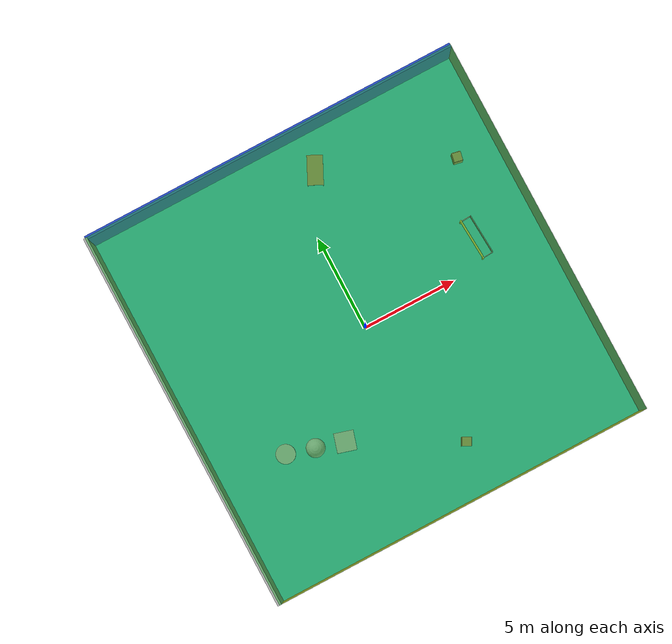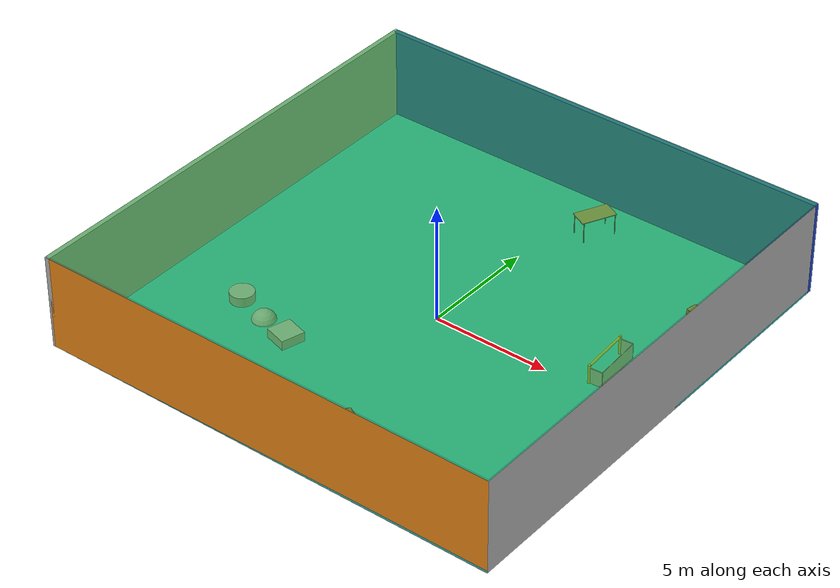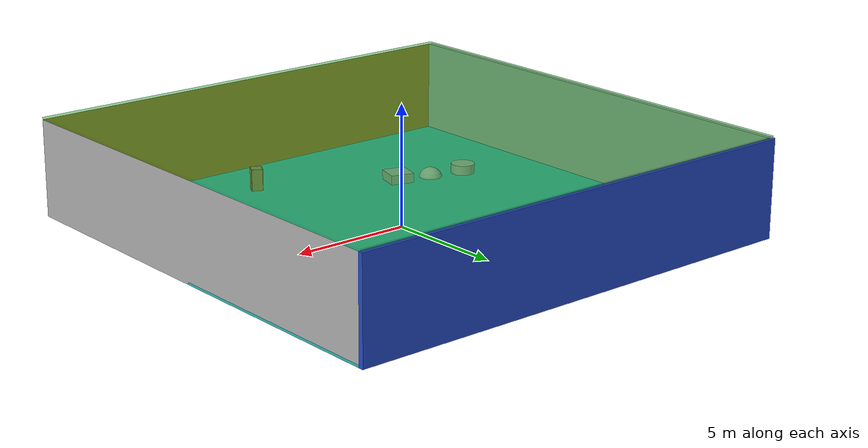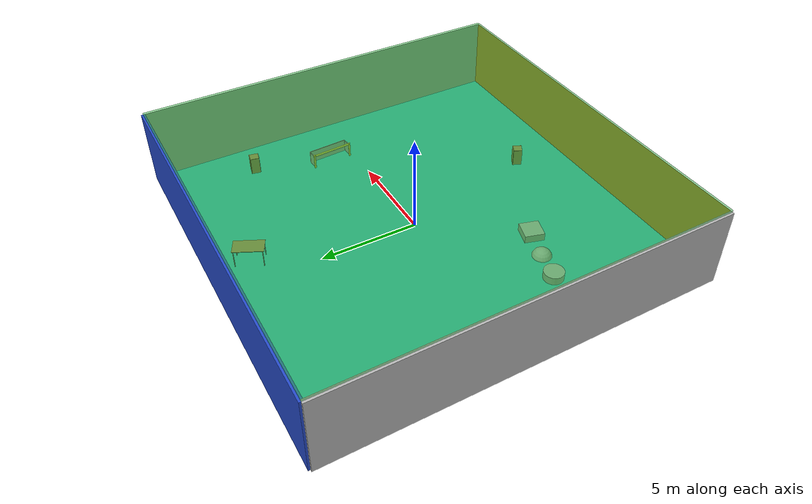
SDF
<sdf version="1.4">
 <world name="default">
  <physics type="ode">
   <max_step_size>0.001</max_step_size>
   <real_time_factor>1</real_time_factor>
   <real_time_update_rate>1000</real_time_update_rate>
   <gravity>0 0 -9.8</gravity>
  </physics>
  <scene><ambient>0.4 0.4 0.4 1</ambient><background>0.7 0.7 0.7 1</background><shadows>1</shadows></scene>
  <model name="Surrounding">
   <static>1</static>
   <link name="Ceiling">
    <collision name="Ceiling_Collision"><geometry><box><size>20 20 0.1</size></box></geometry></collision>
    <visual name="Ceiling_Visual">
     <geometry><box><size>20 20 0.1</size></box></geometry>
     <material>
      <script><uri>file://media/materials/scripts/gazebo.material</uri><name>Gazebo/GreenTransparent</name></script>
     </material>
    </visual>
    <pose>0 0 4.05 0 0 0</pose>
   </link>
   <link name="Wall_South">
    <collision name="Wall_South_Collision">
     <geometry><box><size>20 0 4</size></box></geometry>
     <pose>0 0 2 0 -0 0</pose>
    </collision>
    <visual name="Wall_South_Visual">
     <pose>0 0 2 0 -0 0</pose>
     <geometry><box><size>20 0 4</size></box></geometry>
     <material>
      <script><uri>file://media/materials/scripts/gazebo.material</uri><name>Gazebo/Orange</name></script>
     </material>
    </visual>
    <velocity_decay><linear>0</linear><angular>0</angular></velocity_decay>
    <pose>0 -10 0 0 -0 0</pose>
   </link>
   <link name="Wall_East">
    <collision name="Wall_21_Collision">
     <geometry><box><size>20 0 4</size></box></geometry>
     <pose>0 0 2 0 -0 0</pose>
    </collision>
    <visual name="Wall_21_Visual">
     <pose>0 0 2 0 -0 0</pose>
     <geometry><box><size>20 0 4</size></box></geometry>
     <material>
      <script><uri>file://media/materials/scripts/gazebo.material</uri><name>Gazebo/CloudySky</name></script>
     </material>
    </visual>
    <velocity_decay><linear>0</linear><angular>0</angular></velocity_decay>
    <pose>10 0 0 0 -0 1.5708</pose>
   </link>
   <link name="Wall_North">
    <collision name="Wall_22_Collision">
     <geometry><box><size>20 0.2 4</size></box></geometry>
     <pose>0 0 2 0 -0 0</pose>
    </collision>
    <visual name="Wall_22_Visual">
     <pose>0 0 2 0 -0 0</pose>
     <geometry><box><size>20 0.2 4</size></box></geometry>
     <material>
      <script><uri>file://media/materials/scripts/gazebo.material</uri><name>Gazebo/BlueLaser</name></script>
     </material>
    </visual>
    <velocity_decay><linear>0</linear><angular>0</angular></velocity_decay>
    <pose>0 10 0 0 -0 0</pose>
   </link>
   <link name="Wall_West">
    <collision name="Wall_23_Collision">
     <geometry><box><size>20 0.2 4</size></box></geometry>
     <pose>0 0 2 0 -0 0</pose>
    </collision>
    <visual name="Wall_23_Visual">
     <pose>0 0 2 0 -0 0</pose>
     <geometry><box><size>20 0.2 4</size></box></geometry>
     <material>
      <script><uri>file://media/materials/scripts/gazebo.material</uri><name>Gazebo/CloudySky</name></script>
     </material>
    </visual>
    <velocity_decay><linear>0</linear><angular>0</angular></velocity_decay>
    <pose>-10 0 0 0 0 -1.5708</pose>
   </link>
   <link name="Ground_link">
    <collision name="collision">
     <pose>0 0 .05 0 -0 0</pose>
     <geometry><box><size>20 20 0.1</size></box></geometry>
    </collision>
    <visual name="visual">
     <pose>0 0 .05 0 -0 0</pose>
     <geometry><box><size>20 20 0.1</size></box></geometry>
     <material>
      <script><uri>file://media/materials/scripts/gazebo.material</uri><name>Gazebo/Turquoise</name></script>
     </material>
    </visual>
   </link>
   <static>1</static>
  </model>
  <spherical_coordinates>
   <surface_model>EARTH_WGS84</surface_model>
   <latitude_deg>0</latitude_deg>
   <longitude_deg>0</longitude_deg>
   <elevation>0</elevation>
   <heading_deg>0</heading_deg>
  </spherical_coordinates>
  <light name="lightball_0" type="diffuse">
   <diffuse>0.8 0.8 0.8 1</diffuse>
   <specular>0.2 0.2 0.2 1</specular>
   <attenuation>
    <range>100</range>
    <constant>0.7</constant>
    <linear>0.01</linear>
    <quadratic>0.001</quadratic>
   </attenuation>
   <direction>-0.5 0.1 -0.9</direction>
   <pose>-8.43756518706 6.95502780156 1.10098939699 0 0 0</pose>
  </light>
  <light name="lightball_1" type="diffuse">
   <diffuse>0.8 0.8 0.8 1</diffuse>
   <specular>0.2 0.2 0.2 1</specular>
   <attenuation>
    <range>100</range>
    <constant>0.7</constant>
    <linear>0.01</linear>
    <quadratic>0.001</quadratic>
   </attenuation>
   <direction>-0.5 0.1 -0.9</direction>
   <pose>-4.2146708075 -7.33531887139 1.08568155861 0 0 0</pose>
  </light>
  <light name="lightball_2" type="diffuse">
   <diffuse>0.8 0.8 0.8 1</diffuse>
   <specular>0.2 0.2 0.2 1</specular>
   <attenuation>
    <range>100</range>
    <constant>0.7</constant>
    <linear>0.01</linear>
    <quadratic>0.001</quadratic>
   </attenuation>
   <direction>-0.5 0.1 -0.9</direction>
   <pose>3.3268550312 7.43802645101 0.92532981161 0 0 0</pose>
  </light>
  <light name="lightball_3" type="diffuse">
   <diffuse>0.8 0.8 0.8 1</diffuse>
   <specular>0.2 0.2 0.2 1</specular>
   <attenuation>
    <range>100</range>
    <constant>0.7</constant>
    <linear>0.01</linear>
    <quadratic>0.001</quadratic>
   </attenuation>
   <direction>-0.5 0.1 -0.9</direction>
   <pose>8.4470021281 -9.05621384345 2.99369569493 0 0 0</pose>
  </light>
  <light name="lightball_4" type="diffuse">
   <diffuse>0.8 0.8 0.8 1</diffuse>
   <specular>0.2 0.2 0.2 1</specular>
   <attenuation>
    <range>100</range>
    <constant>0.7</constant>
    <linear>0.01</linear>
    <quadratic>0.001</quadratic>
   </attenuation>
   <direction>-0.5 0.1 -0.9</direction>
   <pose>-7.71000023324 6.41779762593 1.90846344004 0 0 0</pose>
  </light>
  <light name="lightball_5" type="diffuse">
   <diffuse>0.8 0.8 0.8 1</diffuse>
   <specular>0.2 0.2 0.2 1</specular>
   <attenuation>
    <range>100</range>
    <constant>0.7</constant>
    <linear>0.01</linear>
    <quadratic>0.001</quadratic>
   </attenuation>
   <direction>-0.5 0.1 -0.9</direction>
   <pose>-3.27282734245 6.57888645818 2.82441779612 0 0 0</pose>
  </light>
  <light name="lightball_6" type="diffuse">
   <diffuse>0.8 0.8 0.8 1</diffuse>
   <specular>0.2 0.2 0.2 1</specular>
   <attenuation>
    <range>100</range>
    <constant>0.7</constant>
    <linear>0.01</linear>
    <quadratic>0.001</quadratic>
   </attenuation>
   <direction>-0.5 0.1 -0.9</direction>
   <pose>-7.600770381 4.26020045051 2.49370597531 0 0 0</pose>
  </light>
  <light name="lightball_7" type="diffuse">
   <diffuse>0.8 0.8 0.8 1</diffuse>
   <specular>0.2 0.2 0.2 1</specular>
   <attenuation>
    <range>100</range>
    <constant>0.7</constant>
    <linear>0.01</linear>
    <quadratic>0.001</quadratic>
   </attenuation>
   <direction>-0.5 0.1 -0.9</direction>
   <pose>7.43099488602 -3.20877618663 3.50133808918 0 0 0</pose>
  </light>
  <light name="lightball_8" type="diffuse">
   <diffuse>0.8 0.8 0.8 1</diffuse>
   <specular>0.2 0.2 0.2 1</specular>
   <attenuation>
    <range>100</range>
    <constant>0.7</constant>
    <linear>0.01</linear>
    <quadratic>0.001</quadratic>
   </attenuation>
   <direction>-0.5 0.1 -0.9</direction>
   <pose>-6.48785082677 4.38379519278 2.30809836614 0 0 0</pose>
  </light>
  <light name="lightball_9" type="diffuse">
   <diffuse>0.8 0.8 0.8 1</diffuse>
   <specular>0.2 0.2 0.2 1</specular>
   <attenuation>
    <range>100</range>
    <constant>0.7</constant>
    <linear>0.01</linear>
    <quadratic>0.001</quadratic>
   </attenuation>
   <direction>-0.5 0.1 -0.9</direction>
   <pose>-4.45983410728 4.5946755216 2.80358916359 0 0 0</pose>
  </light>
  <include>
   <uri>model://textured_shapes</uri>
   <pose>-4.97564337145 -4.08785515931 0 0 0 1.28806892414</pose>
  </include>
  <include><uri>model://cabinet</uri><pose>1.7263718126 -7.32193122642 0 0 0 1.08231926445</pose></include>
  <include><uri>model://table</uri><pose>1.45820296099 8.00957718822 0 0 0 1.1161908763</pose></include>
  <include>
   <uri>model://robocup_3Dsim_goal</uri>
   <pose>6.68188337939 1.3376265785 0 0 0 0.0588300216819</pose>
  </include>
  <include><uri>model://cabinet</uri><pose>7.9652247161 5.28433883468 0 0 0 2.94225168325</pose></include>
 </world>
</sdf>

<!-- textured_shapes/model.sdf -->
<sdf version="1.6">
  <model name="textured_shapes">
    <pose>0 0 0.5 0 0 0</pose>
    <link name="box">
      <pose>0 -1.5 0 0 0 0</pose>
      <collision name="collision">
        <geometry>
          <box>
            <size>1 1 1</size>
          </box>
        </geometry>
      </collision>
      <visual name="visual">
        <geometry>
          <box>
            <size>1 1 1</size>
          </box>
        </geometry>
        <material>
          <script>
            <uri>model://../model_source/models/textured_shapes/materials/scripts</uri>
            <uri>model://../model_source/models/textured_shapes/materials/textures</uri>
            <name>TexturedShape/Squares</name>
          </script>
        </material>
      </visual>
    </link>
    <link name="sphere">
      <collision name="collision">
        <geometry>
          <sphere>
            <radius>0.5</radius>
          </sphere>
        </geometry>
      </collision>
      <visual name="visual">
        <geometry>
          <sphere>
            <radius>0.5</radius>
          </sphere>
        </geometry>
        <material>
          <script>
            <uri>model://../model_source/models/textured_shapes/materials/scripts</uri>
            <uri>model://../model_source/models/textured_shapes/materials/textures</uri>
            <name>TexturedShape/Squares</name>
          </script>
        </material>
      </visual>
    </link>
    <link name="cylinder">
      <pose>0 1.5 0 0 0 0</pose>
      <collision name="collision">
        <geometry>
          <cylinder>
            <radius>0.5</radius>
            <length>1</length>
          </cylinder>
        </geometry>
      </collision>
      <visual name="visual">
        <geometry>
          <cylinder>
            <radius>0.5</radius>
            <length>1</length>
          </cylinder>
        </geometry>
        <material>
          <script>
            <uri>model://../model_source/models/textured_shapes/materials/scripts</uri>
            <uri>model://../model_source/models/textured_shapes/materials/textures</uri>
            <name>TexturedShape/Squares</name>
          </script>
        </material>
      </visual>
    </link>
  </model>
</sdf>

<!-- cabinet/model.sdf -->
<sdf version="1.5">
  <model name="cabinet">
    <static>true</static>
    <link name="cabinet_bottom_plate">
      <inertial>
        <pose>0 0 -1 0 0 0</pose>
        <inertia>
          <ixx>2.050000</ixx>
          <ixy>0</ixy>
          <ixz>0</ixz>
          <iyy>2.050000</iyy>
          <iyz>0</iyz>
          <izz>2.050000</izz>
        </inertia>
        <mass>25.000000</mass>
      </inertial>
      <collision name="cabinet_bottom_plate_geom">
        <pose>0 0 0.010000 0 0 0</pose>
        <geometry>
          <box>
            <size>0.450000 0.450000 0.020000</size>
          </box>
        </geometry>
      </collision>
      <visual name="cabinet_bottom_plate_geom_visual">
        <pose>0 0 0.010000 0 0 0</pose>
        <geometry>
          <box>
            <size>0.450000 0.450000 0.020000</size>
          </box>
        </geometry>
        <material>
          <script>
            <uri>model://media/materials/scripts/gazebo.material</uri>
            <name>Gazebo/Wood</name>
          </script>
        </material>
      </visual>
      <collision name="cabinet_bottom_plate_geom_cabinet_back_plate">
        <pose>0.235000 0 0.510000 0 0 0</pose>
        <geometry>
          <box>
            <size>0.020000 0.450000 1.020000</size>
          </box>
        </geometry>
      </collision>
      <visual name="cabinet_bottom_plate_geom_cabinet_back_plate_visual">
        <pose>0.235000 0 0.510000 0 0 0</pose>
        <geometry>
          <box>
            <size>0.020000 0.450000 1.020000</size>
          </box>
        </geometry>
        <material>
          <script>
            <uri>model://media/materials/scripts/gazebo.material</uri>
            <name>Gazebo/Wood</name>
          </script>
        </material>
      </visual>
      <collision name="cabinet_bottom_plate_geom_cabinet_left_plate">
        <pose>0 0.235000 0.510000 0 0 0</pose>
        <geometry>
          <box>
            <size>0.450000 0.020000 1.020000</size>
          </box>
        </geometry>
      </collision>
      <visual name="cabinet_bottom_plate_geom_cabinet_left_plate_visual">
        <pose>0 0.235000 0.510000 0 0 0</pose>
        <geometry>
          <box>
            <size>0.450000 0.020000 1.020000</size>
          </box>
        </geometry>
        <material>
          <script>
            <uri>model://media/materials/scripts/gazebo.material</uri>
            <name>Gazebo/Wood</name>
          </script>
        </material>
      </visual>
      <collision name="cabinet_bottom_plate_geom_cabinet_middle_plate">
        <pose>0 0 0.510000 0 0 0</pose>
        <geometry>
          <box>
            <size>0.450000 0.450000 0.020000</size>
          </box>
        </geometry>
      </collision>
      <visual name="cabinet_bottom_plate_geom_cabinet_middle_plate_visual">
        <pose>0 0 0.510000 0 0 0</pose>
        <geometry>
          <box>
            <size>0.450000 0.450000 0.020000</size>
          </box>
        </geometry>
        <material>
          <script>
            <uri>model://media/materials/scripts/gazebo.material</uri>
            <name>Gazebo/Wood</name>
          </script>
        </material>
      </visual>
      <collision name="cabinet_bottom_plate_geom_cabinet_right_plate">
        <pose>0 -0.235000 0.510000 0 0 0</pose>
        <geometry>
          <box>
            <size>0.450000 0.020000 1.020000</size>
          </box>
        </geometry>
      </collision>
      <visual name="cabinet_bottom_plate_geom_cabinet_right_plate_visual">
        <pose>0 -0.235000 0.510000 0 0 0</pose>
        <geometry>
          <box>
            <size>0.450000 0.020000 1.020000</size>
          </box>
        </geometry>
        <material>
          <script>
            <uri>model://media/materials/scripts/gazebo.material</uri>
            <name>Gazebo/Wood</name>
          </script>
        </material>
      </visual>
      <collision name="cabinet_bottom_plate_geom_cabinet_top_plate">
        <pose>0 0 1.010000 0 0 0</pose>
        <geometry>
          <box>
            <size>0.450000 0.450000 0.020000</size>
          </box>
        </geometry>
      </collision>
      <visual name="cabinet_bottom_plate_geom_cabinet_top_plate_visual">
        <pose>0 0 1.010000 0 0 0</pose>
        <geometry>
          <box>
            <size>0.450000 0.450000 0.020000</size>
          </box>
        </geometry>
        <material>
          <script>
            <uri>model://media/materials/scripts/gazebo.material</uri>
            <name>Gazebo/Wood</name>
          </script>
        </material>
      </visual>
    </link>
  </model>
</sdf>

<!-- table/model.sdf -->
<sdf version="1.5">
  <model name="table">
    <static>true</static>
    <link name="link">
      <collision name="surface">
        <pose>0 0 1.0 0 0 0</pose>
        <geometry>
          <box>
            <size>1.5 0.8 0.03</size>
          </box>
        </geometry>
        <surface>
          <friction>
            <ode>
              <mu>0.6</mu>
              <mu2>0.6</mu2>
            </ode>
          </friction>
        </surface>
      </collision>
      <visual name="visual1">
        <pose>0 0 1.0 0 0 0</pose>
        <geometry>
          <box>
            <size>1.5 0.8 0.03</size>
          </box>
        </geometry>
        <material>
          <script>
            <uri>model://media/materials/scripts/gazebo.material</uri>
            <name>Gazebo/Wood</name>
          </script>
        </material>
      </visual>
      <collision name="front_left_leg">
        <pose>0.68 0.38 0.5 0 0 0</pose>
        <geometry>
          <cylinder>
            <radius>0.02</radius>
            <length>1.0</length>
          </cylinder>
        </geometry>
      </collision>
      <visual name="front_left_leg">
        <pose>0.68 0.38 0.5 0 0 0</pose>
        <geometry>
          <cylinder>
            <radius>0.02</radius>
            <length>1.0</length>
          </cylinder>
        </geometry>
        <material>
          <script>
            <uri>model://media/materials/scripts/gazebo.material</uri>
            <name>Gazebo/Grey</name>
          </script>
        </material>
      </visual>
      <collision name="front_right_leg">
        <pose>0.68 -0.38 0.5 0 0 0</pose>
        <geometry>
          <cylinder>
            <radius>0.02</radius>
            <length>1.0</length>
          </cylinder>
        </geometry>
      </collision>
      <visual name="front_right_leg">
        <pose>0.68 -0.38 0.5 0 0 0</pose>
        <geometry>
          <cylinder>
            <radius>0.02</radius>
            <length>1.0</length>
          </cylinder>
        </geometry>
        <material>
          <script>
            <uri>model://media/materials/scripts/gazebo.material</uri>
            <name>Gazebo/Grey</name>
          </script>
        </material>
      </visual>
      <collision name="back_right_leg">
        <pose>-0.68 -0.38 0.5 0 0 0</pose>
        <geometry>
          <cylinder>
            <radius>0.02</radius>
            <length>1.0</length>
          </cylinder>
        </geometry>
      </collision>
      <visual name="back_right_leg">
        <pose>-0.68 -0.38 0.5 0 0 0</pose>
        <geometry>
          <cylinder>
            <radius>0.02</radius>
            <length>1.0</length>
          </cylinder>
        </geometry>
        <material>
          <script>
            <uri>model://media/materials/scripts/gazebo.material</uri>
            <name>Gazebo/Grey</name>
          </script>
        </material>
      </visual>
      <collision name="back_left_leg">
        <pose>-0.68 0.38 0.5 0 0 0</pose>
        <geometry>
          <cylinder>
            <radius>0.02</radius>
            <length>1.0</length>
          </cylinder>
        </geometry>
      </collision>
      <visual name="back_left_leg">
        <pose>-0.68 0.38 0.5 0 0 0</pose>
        <geometry>
          <cylinder>
            <radius>0.02</radius>
            <length>1.0</length>
          </cylinder>
        </geometry>
        <material>
          <script>
            <uri>model://media/materials/scripts/gazebo.material</uri>
            <name>Gazebo/Grey</name>
          </script>
        </material>
      </visual>
    </link>
  </model>
</sdf>

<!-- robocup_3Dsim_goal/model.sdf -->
<sdf version="1.5">
  <model name="robocup_3d_goal">
    <static>true</static>
    <link name="left_post">
      <pose>0 1.05 0.45 0 0 0</pose>
      <collision name="collision">
        <geometry>
          <cylinder>
            <radius>0.05</radius>
            <length>0.9</length>
          </cylinder>
        </geometry>
      </collision>
      <visual name="visual">
        <geometry>
          <cylinder>
            <radius>0.05</radius>
            <length>0.9</length>
          </cylinder>
        </geometry>
        <material>
          <script>
            <uri>file://media/materials/scripts/gazebo.material</uri>
            <name>Gazebo/ZincYellow</name>
          </script>
        </material>
      </visual>
    </link>
    <link name="left_support_horiz_lower">
      <pose>0.30 1.05 0.01 0 0 0</pose>
      <collision name="collision">
        <geometry>
          <box>
            <size>0.50 0.02 0.02</size>
          </box>
        </geometry>
      </collision>
      <visual name="visual">
        <geometry>
          <box>
            <size>0.50 0.02 0.02</size>
          </box>
        </geometry>
        <material>
          <script>
            <uri>file://media/materials/scripts/gazebo.material</uri>
            <name>Gazebo/White</name>
          </script>
        </material>
      </visual>
    </link>
    <link name="left_support_horiz_upper">
      <pose>0.30 1.05 0.79 0 0 0</pose>
      <collision name="collision">
        <geometry>
          <box>
            <size>0.50 0.02 0.02</size>
          </box>
        </geometry>
      </collision>
      <visual name="visual">
        <geometry>
          <box>
            <size>0.50 0.02 0.02</size>
          </box>
        </geometry>
        <material>
          <script>
            <uri>file://media/materials/scripts/gazebo.material</uri>
            <name>Gazebo/White</name>
          </script>
        </material>
      </visual>
    </link>
    <link name="left_support_vertical">
      <pose>0.56 1.05 0.4 0 1.5708 0</pose>
      <collision name="collision">
        <geometry>
          <box>
            <size>0.80 0.02 0.02</size>
          </box>
        </geometry>
      </collision>
      <visual name="visual">
        <geometry>
          <box>
            <size>0.80 0.02 0.02</size>
          </box>
        </geometry>
        <material>
          <script>
            <uri>file://media/materials/scripts/gazebo.material</uri>
            <name>Gazebo/White</name>
          </script>
        </material>
      </visual>
    </link>
    <link name="right_support_horiz_lower">
      <pose>0.30 -1.05 0.01 0 0 0</pose>
      <collision name="collision">
        <geometry>
          <box>
            <size>0.50 0.02 0.02</size>
          </box>
        </geometry>
      </collision>
      <visual name="visual">
        <geometry>
          <box>
            <size>0.50 0.02 0.02</size>
          </box>
        </geometry>
        <material>
          <script>
            <uri>file://media/materials/scripts/gazebo.material</uri>
            <name>Gazebo/White</name>
          </script>
        </material>
      </visual>
    </link>
    <link name="right_support_horiz_upper">
      <pose>0.30 -1.05 0.79 0 0 0</pose>
      <collision name="collision">
        <geometry>
          <box>
            <size>0.50 0.02 0.02</size>
          </box>
        </geometry>
      </collision>
      <visual name="visual">
        <geometry>
          <box>
            <size>0.50 0.02 0.02</size>
          </box>
        </geometry>
        <material>
          <script>
            <uri>file://media/materials/scripts/gazebo.material</uri>
            <name>Gazebo/White</name>
          </script>
        </material>
      </visual>
    </link>
    <link name="right_support_vertical">
      <pose>0.56 -1.05 0.4 0 1.5708 0</pose>
      <collision name="collision">
        <geometry>
          <box>
            <size>0.80 0.02 0.02</size>
          </box>
        </geometry>
      </collision>
      <visual name="visual">
        <geometry>
          <box>
            <size>0.80 0.02 0.02</size>
          </box>
        </geometry>
        <material>
          <script>
            <uri>file://media/materials/scripts/gazebo.material</uri>
            <name>Gazebo/White</name>
          </script>
        </material>
      </visual>
    </link>
    <link name="center_support_horiz_lower">
      <pose>0.56 0 0.01 0 1.5708 0</pose>
      <collision name="collision">
        <geometry>
          <box>
            <size>0.02 2.08 0.02</size>
          </box>
        </geometry>
      </collision>
      <visual name="visual">
        <geometry>
          <box>
            <size>0.02 2.08 0.02</size>
          </box>
        </geometry>
        <material>
          <script>
            <uri>file://media/materials/scripts/gazebo.material</uri>
            <name>Gazebo/White</name>
          </script>
        </material>
      </visual>
    </link>
    <link name="center_support_horiz_upper">
      <pose>0.56 0 0.79 0 1.5708 0</pose>
      <collision name="collision">
        <geometry>
          <box>
            <size>0.02 2.08 0.02</size>
          </box>
        </geometry>
      </collision>
      <visual name="visual">
        <geometry>
          <box>
            <size>0.02 2.08 0.02</size>
          </box>
        </geometry>
        <material>
          <script>
            <uri>file://media/materials/scripts/gazebo.material</uri>
            <name>Gazebo/White</name>
          </script>
        </material>
      </visual>
    </link>
    <link name="right_post">
      <pose>0 -1.05 0.45 0 0 0</pose>
      <collision name="collision">
        <geometry>
          <cylinder>
            <radius>0.05</radius>
            <length>0.9</length>
          </cylinder>
        </geometry>
      </collision>
      <visual name="visual">
        <geometry>
          <cylinder>
            <radius>0.05</radius>
            <length>0.9</length>
          </cylinder>
        </geometry>
        <material>
          <script>
            <uri>file://media/materials/scripts/gazebo.material</uri>
            <name>Gazebo/ZincYellow</name>
          </script>
        </material>
      </visual>
    </link>
    <link name="crossbar">
      <pose>0 0 0.85 1.57 1.57 0</pose>
      <collision name="collision">
        <geometry>
          <cylinder>
            <radius>0.05</radius>
            <length>2.0</length>
          </cylinder>
        </geometry>
      </collision>
      <visual name="visual">
        <geometry>
          <cylinder>
            <radius>0.05</radius>
            <length>2.0</length>
          </cylinder>
        </geometry>
        <material>
          <script>
            <uri>file://media/materials/scripts/gazebo.material</uri>
            <name>Gazebo/ZincYellow</name>
          </script>
        </material>
      </visual>
    </link>
    <link name="center_net">
      <pose>0.56 0 0.40 0 0 0</pose>
      <collision name="collision">
        <geometry>
          <box>
            <size>0.01 2.1 0.80</size>
          </box>
        </geometry>
      </collision>
      <visual name="visual">
        <geometry>
          <box>
            <size>0.01 2.1 0.80</size>
          </box>
        </geometry>
        <material>
          <script>
            <uri>model://../model_source/models/robocup09_spl_field/materials/scripts/</uri>
            <uri>model://../model_source/models/robocup09_spl_field/materials/textures/</uri>
            <name>RoboCup/Net</name>
          </script>
        </material>
      </visual>
    </link>
    <link name="left_net">
      <pose>0.30 1.05 0.40 0 0 0</pose>
      <collision name="collision">
        <geometry>
          <box>
            <size>0.50 0.01 0.76</size>
          </box>
        </geometry>
      </collision>
      <visual name="visual">
        <geometry>
          <box>
            <size>0.50 0.01 0.76</size>
          </box>
        </geometry>
        <material>
          <script>
            <uri>model://../model_source/models/robocup09_spl_field/materials/scripts/</uri>
            <uri>model://../model_source/models/robocup09_spl_field/materials/textures/</uri>
            <name>RoboCup/Net</name>
          </script>
        </material>
      </visual>
    </link>
    <link name="right_net">
      <pose>0.30 -1.05 0.40 0 0 0</pose>
      <collision name="collision">
        <geometry>
          <box>
            <size>0.50 0.01 0.76</size>
          </box>
        </geometry>
      </collision>
      <visual name="visual">
        <geometry>
          <box>
            <size>0.50 0.01 0.76</size>
          </box>
        </geometry>
        <material>
          <script>
            <uri>model://../model_source/models/robocup09_spl_field/materials/scripts/</uri>
            <uri>model://../model_source/models/robocup09_spl_field/materials/textures/</uri>
            <name>RoboCup/Net</name>
          </script>
        </material>
      </visual>
    </link>
  </model>
</sdf>
